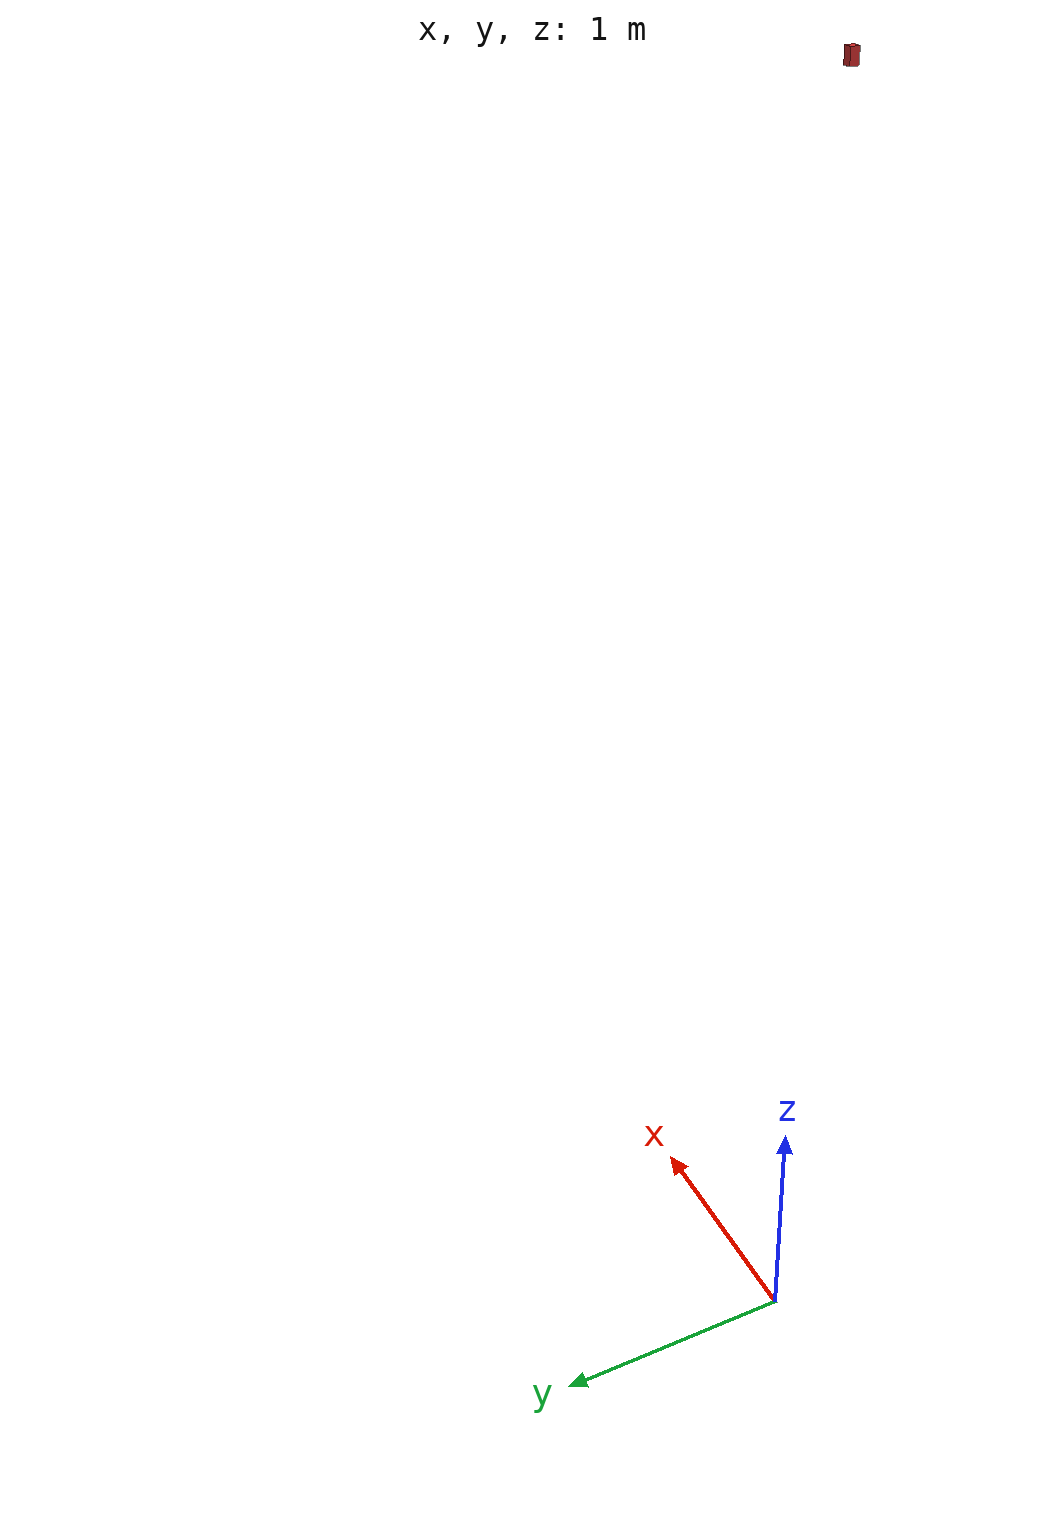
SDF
<?xml version='1.0'?>
<sdf version='1.7'>
  <model name='terralink_uav'>
    <static>1</static>
    <link name='uav_base_link'>
      <inertial>
        <pose>0 0 0.005 0 0 0</pose>
        <mass>50</mass>
        <inertia>
          <ixx>0.375417</ixx>
          <ixy>0</ixy>
          <ixz>0</ixz>
          <iyy>0.375417</iyy>
          <iyz>0</iyz>
          <izz>0.75</izz>
        </inertia>
      </inertial>
      <!-- Depth camera sensor for elevation mapping -->
      <sensor name='depth_camera' type='depth'>
        <always_on>1</always_on>
        <visualize>0</visualize>
        <update_rate>10</update_rate>
        <camera>
          <horizontal_fov>1.25</horizontal_fov>
          <image>
            <format>R8G8B8</format>
            <width>1000</width>
            <height>1000</height>
          </image>
          <clip>
            <near>0.5</near>
            <far>30.0</far>
          </clip>
        </camera>
        <plugin name='depth_camera_controller' filename='libgazebo_ros_camera.so'>
          <ros>
            <namespace>/terralink_uav</namespace>
            <remapping>~/image_raw:=/depth/image_raw</remapping>
            <remapping>~/depth:=/depth/image_raw</remapping>
            <remapping>~/points:=/depth/points</remapping>
          </ros>
          <frame_name>depth_camera_optical</frame_name>
        </plugin>
        <!-- Camera pointing DOWN: pose x=0, y=0, z=5, roll=3.14159, pitch=1.57079, yaw=3.14159 -->
        <pose>0 0 5 3.14159 1.57079 3.14159</pose>
      </sensor>
      <self_collide>0</self_collide>
      <enable_wind>0</enable_wind>
      <kinematic>0</kinematic>
      <pose>0 0 0 0 0 0</pose>
      <visual name='chassis_visual'>
        <pose>0 0 0.005 0 0 0</pose>
        <geometry>
          <box>
            <size>0.01 0.01 0.01</size>
          </box>
        </geometry>
        <material>
          <script>
            <name>Gazebo/White</name>
            <uri>file://media/materials/scripts/gazebo.material</uri>
          </script>
          <shader type='pixel'/>
          <emissive>0 0 0 1</emissive>
        </material>
        <transparency>0</transparency>
        <cast_shadows>1</cast_shadows>
      </visual>
      <visual name='camera_link_visual'>
        <pose>0 0 5 3.14159 1.57079 3.14159</pose>
        <geometry>
          <box>
            <size>0.05 0.03 0.03</size>
          </box>
        </geometry>
        <material>
          <script>
            <name>Gazebo/Red</name>
            <uri>file://media/materials/scripts/gazebo.material</uri>
          </script>
          <shader type='pixel'/>
          <emissive>0 0 0 1</emissive>
        </material>
        <transparency>0</transparency>
        <cast_shadows>1</cast_shadows>
      </visual>
      <collision name='chassis_collision'>
        <laser_retro>0</laser_retro>
        <max_contacts>10</max_contacts>
        <pose>0 0 0.005 0 0 0</pose>
        <geometry>
          <box>
            <size>0.1 0.1 0.01</size>
          </box>
        </geometry>
        <surface>
          <friction>
            <ode>
              <mu>1</mu>
              <mu2>1</mu2>
              <fdir1>0 0 0</fdir1>
              <slip1>0</slip1>
              <slip2>0</slip2>
            </ode>
          </friction>
        </surface>
      </collision>
    </link>
    <allow_auto_disable>1</allow_auto_disable>
  </model>
</sdf>
